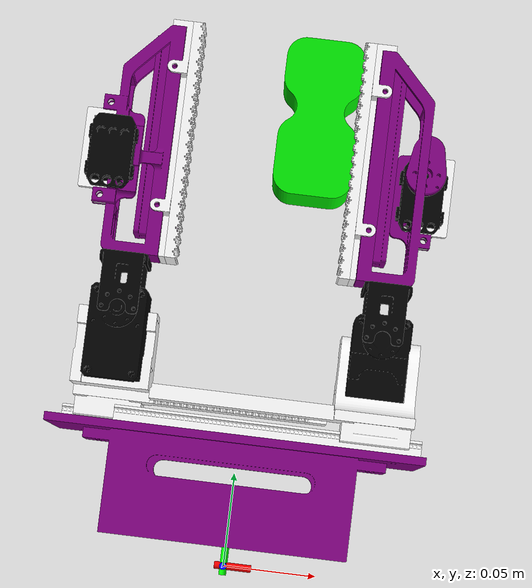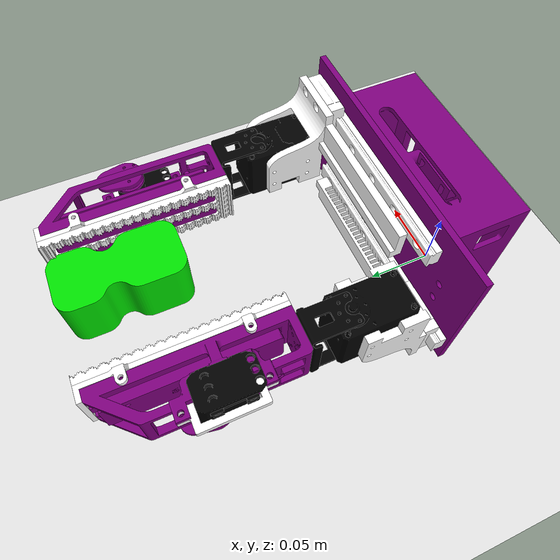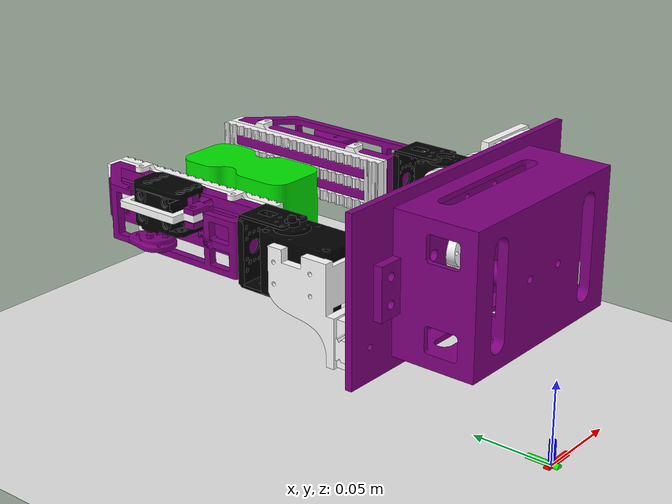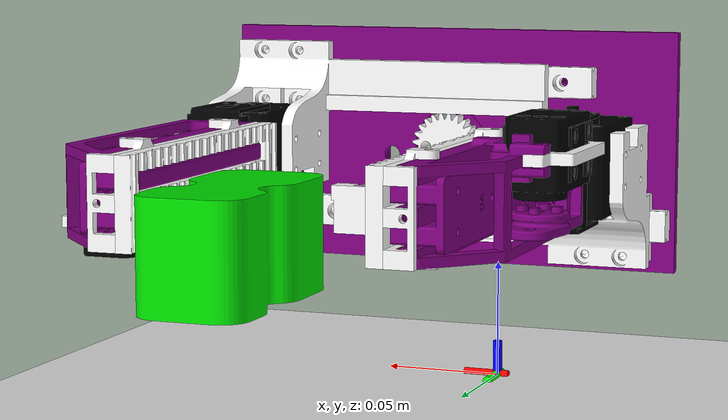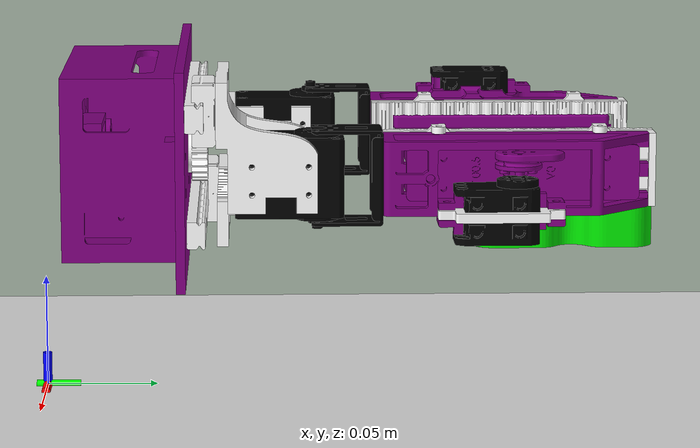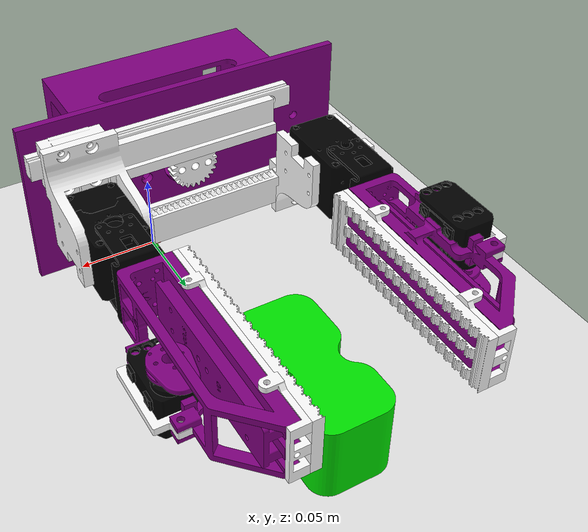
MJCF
<mujoco model="Variable_Friction_Gripper">

  <compiler meshdir="assets" texturedir="assets"/>

  <asset>
    <mesh name="motor"    file=".\assets\VF_CAD\XM,H-430_idler.STL"    />
    <mesh name="fr12"    file=".\assets\VF_CAD\fr12_h101.STL"    />
    <mesh name="finger" file=".\assets\VF_CAD\VF_Finger.STL" />
    <mesh name='finger_holder' file='.\assets\VF_CAD\New_Part.STL' />
    <mesh name='ball_bearing_carriage' file='.\assets\VF_CAD\6725K410_BALL BEARING CARRIAGE.STL' />
    <mesh name='ball_bearing_mover' file='.\assets\VF_CAD\8438K400_CORROSION-RESISTANT BALL BEARING CARRIAGE.STL' />
    <mesh name='base_plate' file='.\assets\VF_CAD\basePlate_resolved.STL' />
    <mesh name='pad_interface' file='.\assets\VF_CAD\pad_interface.STL' />
    <mesh name='HF_surface' file='.\assets\VF_CAD\surface.STL' />
    <mesh name='XL_motor' file='.\assets\VF_CAD\XL-320.STL'    />
    <mesh name='servo_clamp' file='.\assets\VF_CAD\Servo_Clamp.STL'    />
    <mesh name='finger_cam' file='.\assets\VF_CAD\Finger_Cam_V0.STL'    />
    <mesh name='Finger_insert' file='.\assets\VF_CAD\Finger_insert.STL'    />
    <mesh name='Motor_holder' file='.\assets\VF_CAD\Motor_Holder.STL'  />
    <mesh name='center_gear' file='.\assets\VF_CAD\Lower_Gear.STL'  />
    <mesh name="hexagon" file=".\assets\Object_Assets\hex.stl" />
    <mesh name="non_convex_part" file=".\assets\Object_Assets\non-convex1.STL" scale="0.002 0.002 0.002"/>
  </asset>

  <default>
    <mesh scale="0.001 0.001 0.001"/>
    <geom type="mesh" solref=".004 1"/>
    <joint damping="1.084" armature="0.045" frictionloss="0.03"/>
    <site group="5" type="sphere"/>
    <position kp="21.1" ctrlrange="-3.141592 3.141592" forcerange="-50 50"/>
    <default class="collision">
      <geom group="3"/>
      <default class="foot">
        <geom mass="0" type="box"/>
      </default>
    </default>
    <default class="visual">
      <geom material="black" contype="0" conaffinity="0" group="2"/>
    </default>
  </default>

  <!-- Optionally tune global defaults -->
  <default>
    <joint damping="1.0" limited="true"/>
    <geom contype="1" conaffinity="1" rgba="0.8 0.6 0.4 1" solref="0.0005 1" solimp="0.99 0.999 0.001"/>
  </default>

  <worldbody>

    <!-- # add 3d axis for visualization at the origin -->
    <light diffuse=".5 .5 .5" pos="0 0 3" dir="0 0 -1"/>

    <!-- Draw 3d x y z axis at origin -->
    <body name="origin" pos="0 0 0">
      <geom type="cylinder" size="0.002 0.01" pos="0.005 0 0" euler="0 90 0" rgba="1 0 0 1"/> <!-- x axis in red -->
      <geom type="cylinder" size="0.002 0.01" pos="0 0.005 0" euler="-90 0 0" rgba="0 1 0 1"/> <!-- y axis in green -->
      <geom type="cylinder" size="0.002 0.01" pos="0 0 0.005" euler="0 0 0" rgba="0 0 1 1"/> <!-- z axis in blue -->
    </body>

    <!-- Draw ground plane -->
    <geom type="plane" size="1 1 0.001" pos="0 0 0" rgba="0.9 0.9 0.9 1"/>

    <!-- Spawn a square object to be grasped (very low friction #"0.2 0.002 0.0001")-->
    <body name="square_object" pos="0.002 0.27 0.07" euler="90 0 0">
      <joint type="free"/>
      <geom type="mesh" mesh="non_convex_part" name="non_convex_part_object" rgba="0 .9 0 1" friction="0.1 0.002 0.0001"/>

    </body>

    <!-- Setup the camera -->
    <camera name="fixed_camera" pos="0.0 0.2 0.8" xyaxes="1 0 0 0 1 0"/>

    <body name="motor_holder" pos="-0.075 0.061 0.068" euler="90 0 0" >
      <geom type="mesh" mesh="Motor_holder" name="geom_motor_holder" rgba="0.5 0 0.5 1"/>
      <body name="base_plate" pos="-0.017 -0.0075 0" euler="-90 0 0">
        <geom type="mesh" mesh="base_plate" name="geom_base_plate" rgba="0.5 0 0.5 1"/>

          <body name="center_gear" pos="0.092 0.0 0.0468  " euler="-90 0 0">
            <joint name="center_gear_joint" type="hinge" axis="0 0 1" range="-180 180"/>
            <geom type="mesh" mesh="center_gear" name="geom_center_gear" pos="-0.01373 -0.014 -0.002" rgba="1 1 1 1"/>
          </body>

          <body name="ball_bearing_carriage_1" pos="0.002 0.004 0.013">
          <geom type="mesh" mesh="ball_bearing_carriage" name="geom_ball_bearing_carriage1" rgba="1 1 1 1"/>
              <body name="ball_bearing_mover_1" pos="0.040 0 -0.008" euler="0 -90 0">
              <joint name="finger1_slide" type="slide" axis="0 0 1"
                      range="-0.0402 0" damping="20" armature="0.001" />
              <geom type="mesh" mesh="ball_bearing_mover" name="geom_ball_bearing_mover1" rgba="1 1 1 1"/>
                  <body name="finger_holder_1" pos="0.055 0.013 0.035" euler="-90 0 90">
                  <geom type="mesh" mesh="finger_holder" name="geom_finger_holder1" rgba="1 1 1 1"/>
                      <body name="motor1" pos="0.005 0.0328 0.008" euler="90 0 0">
                      <geom type="mesh" mesh="motor" name="geom_motor1" contype="0" conaffinity="0" rgba="0 0 0 1"/>
                          <body name="fr12_1" pos="0.0143 0.0352 0.040" euler="0 90 0">
                          <joint name="finger1_to_motor1" type="hinge" axis="1 0 0" range="-70 70"/>
                          <geom type="mesh" mesh="fr12" name="geom_fr12_1" pos="0 -0.0025 -0.012" contype="0" conaffinity="0" rgba="0 0 0 1"/>
                          <body name="finger1" pos="-0.008 0.028 -0.0195">
                              <geom type="mesh" mesh="finger" name="geom_finger1" rgba="0.5 0 0.5 1"/>
                              <body name="pad_interface_1" pos="0.0096 0 0.029" euler="90 90 0">
                                  <geom type="mesh" mesh="pad_interface" name="geom_pad_interface1" rgba="1 1 1 1" />
                                  <body name="HF_surface_1" pos="0 0.010 0.003">
                                      <geom type="mesh" mesh="HF_surface" name="geom_HF_surface1" friction="3000.0 2 1" rgba="1 1 1 1"/>
                                      <body name='XL_motor1' pos='0.030 -0.020 -0.011' euler='0 0 -90'>
                                          <geom type='mesh' mesh='XL_motor' name='geom_XL_motor1' rgba="0 0 0 1"/>
                                          <body name='servo_clamp1' pos='0.012 0.047 0.0105' euler='0 0 -90'>
                                              <geom type='mesh' mesh='servo_clamp' name='geom_servo_clamp1' rgba="1 1 1 1"/>
                                              <body name='finger_cam1' pos='0.020 0 0.023' euler='-90 0 0'>
                                                  <geom type='mesh' mesh='finger_cam' name='geom_finger_cam1' pos="-0.020 -0.005 -0.010" rgba="0.5 0 0.5 1"/>
                                                  <site name="end1" pos="0.007 0.040 0.010" size="0.01"/>
                                                  <body name='Finger_insert1' pos='-0.054 -0.0055 -0.015' euler='0 180 90'>
                                                      <joint name="finger_insert_slide_1" type="slide" axis="0 0 1"
                                                        range="-0.001 0.0038" damping="20.1"/>
                                                      <geom type='mesh' mesh='Finger_insert' name='geom_Finger_insert1' friction="0.2 0.002 0.0001" rgba="0.5 0 0.5 1"/>
                                                  </body>
                                              </body>
                                          </body>
                                      </body>
                                  </body>
                              </body>
                          </body>
                          </body>
                      </body>
                  </body>
              </body>
          </body>

          <body name="ball_bearing_carriage_2" pos="0.182 0.004 0.08" euler="0 180 0">
          <geom type="mesh" mesh="ball_bearing_carriage" name="geom_ball_bearing_carriage2" rgba="1 1 1 1"/>
              <body name="ball_bearing_mover_2" pos="0.040 0 -0.008" euler="0 -90 0">
              <joint name="finger2_slide" type="slide" axis="0 0 1"
                      range="-0.0402 0" damping="20" armature="0.001" />
              <geom type="mesh" mesh="ball_bearing_mover" name="geom_ball_bearing_mover2" rgba="1 1 1 1"/>
                  <body name="finger_holder_2" pos="0.055 0.013 0.035" euler="-90 0 90">
                  <geom type="mesh" mesh="finger_holder" name="geom_finger_holder2" rgba="1 1 1 1"/>
                      <body name="motor2" pos="0.005 0.0328 0.008" euler="90 0 0">
                      <geom type="mesh" mesh="motor" name="geom_motor2" contype="0" conaffinity="0" rgba="0 0 0 1"/>
                          <body name="fr12_2" pos="0.0143 0.0352 0.040" euler="0 90 0">
                          <joint name="finger2_to_motor2" type="hinge" axis="1 0 0" range="-70 70"/>
                          <geom type="mesh" mesh="fr12" name="geom_fr12_2" pos="0 -0.0025 -0.012" contype="0" conaffinity="0" rgba="0 0 0 1"/>
                          <body name="finger2" pos="-0.008 0.028 -0.0195">
                              <geom type="mesh" mesh="finger" name="geom_finger2" rgba="0.5 0 0.5 1"/>
                              <body name="pad_interface_2" pos="0.0096 0 0.029" euler="90 90 0">
                                  <geom type="mesh" mesh="pad_interface" name="geom_pad_interface2" rgba="1 1 1 1"/>
                                  <body name="HF_surface_2" pos="0 0.010 0.003" >
                                      <geom type="mesh" mesh="HF_surface" name="geom_HF_surface2" friction="3000.0 2 1" rgba="1 1 1 1"/>
                                      <body name='XL_motor2' pos='0.030 -0.020 -0.011' euler='0 0 -90'>
                                          <geom type='mesh' mesh='XL_motor' name='geom_XL_motor2' rgba="0 0 0 1"/>
                                          <body name='servo_clamp2' pos='0.012 0.047 0.0105' euler='0 0 -90'>
                                              <geom type='mesh' mesh='servo_clamp' name='geom_servo_clamp2' rgba="1 1 1 1"/>
                                              <body name='finger_cam2' pos='0.020 0 0.023' euler='-90 0 0'>
                                                  <geom type='mesh' mesh='finger_cam' name='geom_finger_cam2' pos="-0.020 -0.005 -0.010" rgba="0.5 0 0.5 1"/>
                                                  <site name="end2" pos="0.007 0.040 0.010" size="0.01"/>
                                                  <body name='Finger_insert2' pos='-0.054 -0.0055 -0.015' euler='0 180 90'>
                                                      <joint name="finger_insert_slide_2" type="slide" axis="0 0 1"
                                                        range="-0.001 0.0038" damping="20.1"/>
                                                      <geom type='mesh' mesh='Finger_insert' name='geom_Finger_insert2' friction="0.2 0.002 0.0001" rgba="0.5 0 0.5 1"/>
                                                  </body>
                                              </body>
                                          </body>
                                      </body>
                                  </body>
                              </body>
                          </body>
                          </body>
                      </body>
                  </body>
              </body>
          </body>

      </body>
    </body>

  </worldbody>

  <option integrator="Euler"
        solver="Newton"
        cone="elliptic"
        impratio="20"
        iterations="200"
        noslip_iterations="20"
  />

  <contact>
    <exclude body1="center_gear" body2="base_plate"/>
    <exclude body1="center_gear" body2="motor_holder"/>
    <exclude body1="center_gear" body2="ball_bearing_carriage_2"/>
    <exclude body1="center_gear" body2="ball_bearing_carriage_1"/>
    <exclude body1="ball_bearing_carriage_1" body2="ball_bearing_mover_1"/>
    <exclude body1="fr12_1" body2="motor1"/>
    <exclude body1="Finger_insert1" body2="HF_surface_1"/>
    <exclude body1="Finger_insert1" body2="pad_interface_1"/>

    <exclude body1="ball_bearing_carriage_2" body2="ball_bearing_mover_2"/>
    <exclude body1="fr12_2" body2="motor2"/>
    <exclude body1="Finger_insert2" body2="HF_surface_2"/>
    <exclude body1="Finger_insert2" body2="pad_interface_2"/>

    <exclude body1="finger_holder_2" body2="finger_holder_1"/>

  </contact>

  <actuator>
    <general name="act_finger1" joint="finger1_to_motor1" ctrlrange="-1.22 1.22"/>
    <position name="act_palm" joint="finger1_slide" ctrlrange="-0.0402 0"  kp="1500" kv="50" />
    <position name="finger1_friction" joint="finger_insert_slide_1" ctrlrange="-0.001 0.0038" kp="8000" />
    <general name="act_center_gear" joint="center_gear_joint"  ctrlrange="-1.57 1.57" />
    <general name="act_finger2" joint="finger2_to_motor2" ctrlrange="-1.22 1.22"/>
    <position name="finger2_friction" joint="finger_insert_slide_2" ctrlrange="-0.001 0.0038" kp="8000" />

  </actuator>

  <sensor>
    <!-- Finger 1 sensors -->
    <jointpos name="finger1_pos" joint="finger1_to_motor1" />
    <jointvel name="finger1_vel" joint="finger1_to_motor1" />
    <actuatorfrc name="finger1_force" actuator="act_finger1" />

    <!-- Finger 2 sensors -->
    <jointpos name="finger2_pos" joint="finger2_to_motor2" />
    <jointvel name="finger2_vel" joint="finger2_to_motor2" />
    <actuatorfrc name="finger2_force" actuator="act_finger2" />

    <!-- Slide joint sensors -->
    <jointpos name="finger1_slide_pos" joint="finger1_slide" />
  </sensor>

  <equality>
    <!-- finger2_slide = -finger1_slide -->
    <joint joint1="finger1_slide" joint2="finger2_slide" polycoef="0 1 0 0 0"/>
  </equality>

</mujoco>
